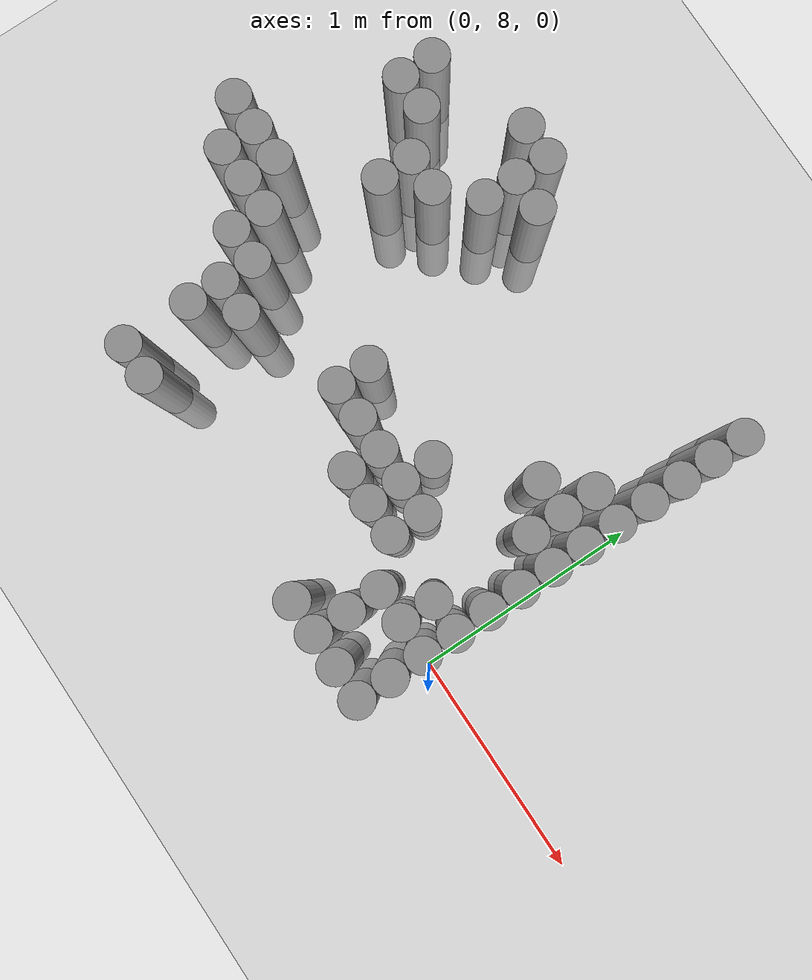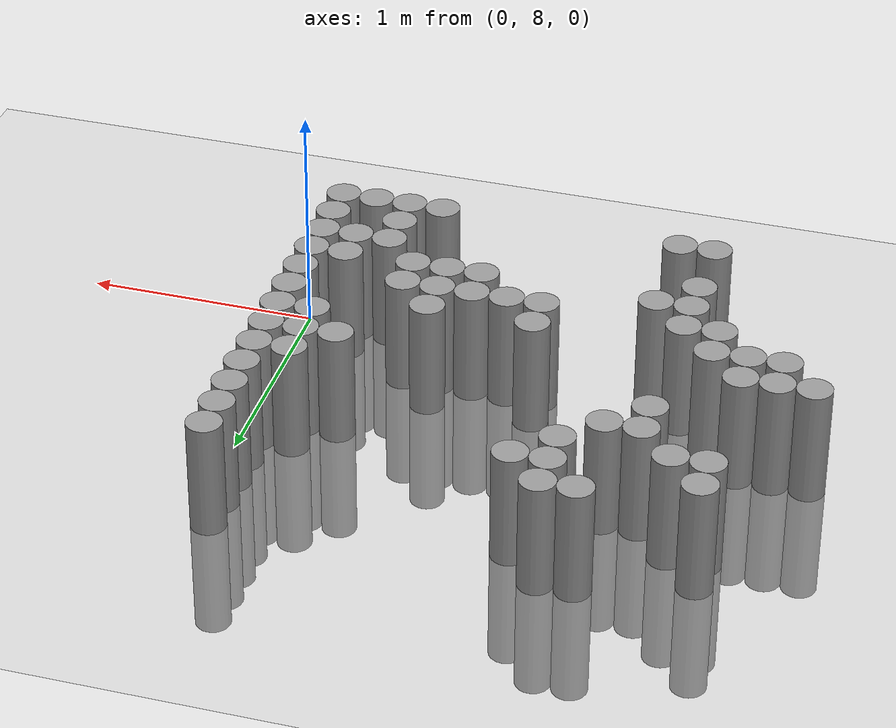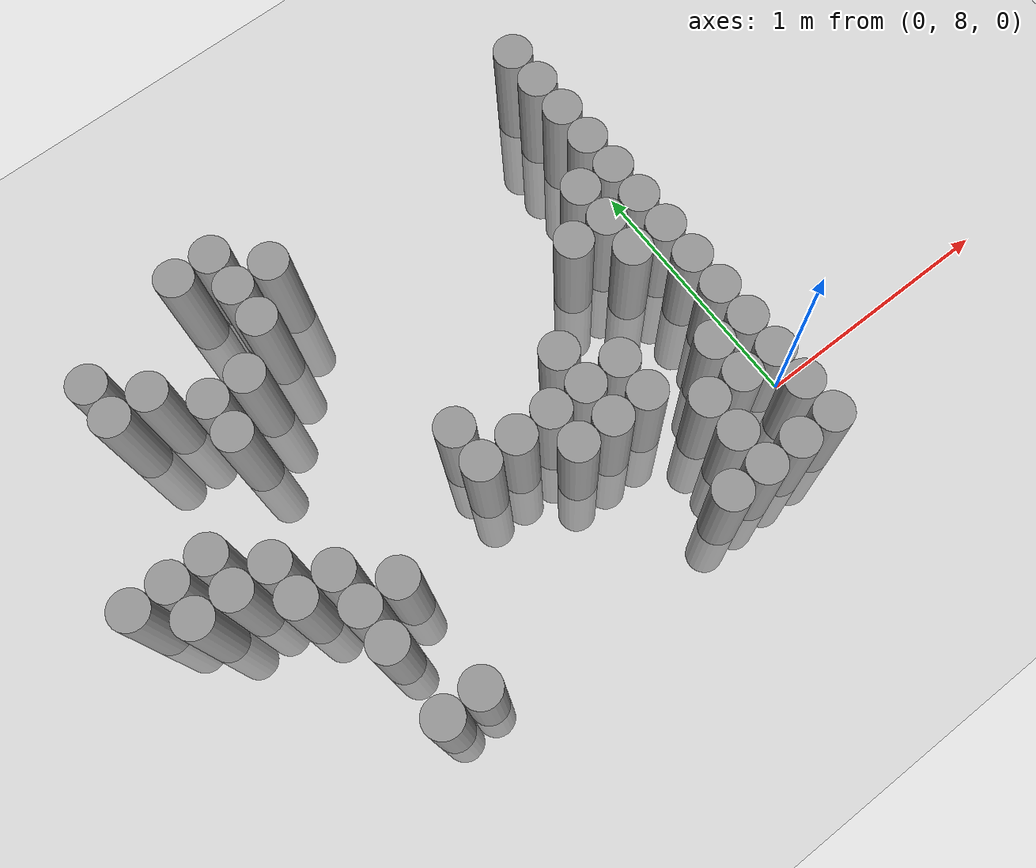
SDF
<sdf version="1.6">
 <world name="default">
  <model name="ground_plane">
   <static>1</static>
   <static>1</static>
   <link name="link">
    <collision name="collision">
     <geometry><plane><normal>0 0 1</normal><size>100 100</size></plane></geometry>
     <surface><friction><ode><mu>100</mu><mu2>50</mu2></ode></friction></surface>
    </collision>
    <visual name="visual">
     <cast_shadows>0</cast_shadows>
     <geometry><plane><normal>0 0 1</normal><size>100 100</size></plane></geometry>
     <material>
      <script><uri>file://media/materials/scripts/gazebo.material</uri><name>Gazebo/Grey</name></script>
     </material>
    </visual>
   </link>
  </model>
  <model name="unit_cylinder_181">
   <static>1</static>
   <pose>-2.325000 8.625000 0.000000 0.000000 0.000000 0.000000</pose>
   <link name="link">
    <inertial>
     <mass>1</mass>
     <inertia><ixx>0.145833</ixx><ixy>0</ixy><ixz>0</ixz><iyy>0.145833</iyy><iyz>0</iyz><izz>0.125</izz></inertia>
    </inertial>
    <collision name="collision">
     <geometry><cylinder><radius>0.075000</radius><length>1</length></cylinder></geometry>
    </collision>
    <visual name="visual">
     <geometry><cylinder><radius>0.075000</radius><length>1</length></cylinder></geometry>
     <material>
      <script><name>Gazebo/Grey</name><uri>file://media/materials/scripts/gazebo.material</uri></script>
     </material>
    </visual>
   </link>
  </model>
  <model name="unit_cylinder_183">
   <static>1</static>
   <pose>-2.175000 8.475000 0.000000 0.000000 0.000000 0.000000</pose>
   <link name="link">
    <inertial>
     <mass>1</mass>
     <inertia><ixx>0.145833</ixx><ixy>0</ixy><ixz>0</ixz><iyy>0.145833</iyy><iyz>0</iyz><izz>0.125</izz></inertia>
    </inertial>
    <collision name="collision">
     <geometry><cylinder><radius>0.075000</radius><length>1</length></cylinder></geometry>
    </collision>
    <visual name="visual">
     <geometry><cylinder><radius>0.075000</radius><length>1</length></cylinder></geometry>
     <material>
      <script><name>Gazebo/Grey</name><uri>file://media/materials/scripts/gazebo.material</uri></script>
     </material>
    </visual>
   </link>
  </model>
  <model name="unit_cylinder_184">
   <static>1</static>
   <pose>-2.175000 8.625000 0.000000 0.000000 0.000000 0.000000</pose>
   <link name="link">
    <inertial>
     <mass>1</mass>
     <inertia><ixx>0.145833</ixx><ixy>0</ixy><ixz>0</ixz><iyy>0.145833</iyy><iyz>0</iyz><izz>0.125</izz></inertia>
    </inertial>
    <collision name="collision">
     <geometry><cylinder><radius>0.075000</radius><length>1</length></cylinder></geometry>
    </collision>
    <visual name="visual">
     <geometry><cylinder><radius>0.075000</radius><length>1</length></cylinder></geometry>
     <material>
      <script><name>Gazebo/Grey</name><uri>file://media/materials/scripts/gazebo.material</uri></script>
     </material>
    </visual>
   </link>
  </model>
  <model name="unit_cylinder_185">
   <static>1</static>
   <pose>-2.025000 8.475000 0.000000 0.000000 0.000000 0.000000</pose>
   <link name="link">
    <inertial>
     <mass>1</mass>
     <inertia><ixx>0.145833</ixx><ixy>0</ixy><ixz>0</ixz><iyy>0.145833</iyy><iyz>0</iyz><izz>0.125</izz></inertia>
    </inertial>
    <collision name="collision">
     <geometry><cylinder><radius>0.075000</radius><length>1</length></cylinder></geometry>
    </collision>
    <visual name="visual">
     <geometry><cylinder><radius>0.075000</radius><length>1</length></cylinder></geometry>
     <material>
      <script><name>Gazebo/Grey</name><uri>file://media/materials/scripts/gazebo.material</uri></script>
     </material>
    </visual>
   </link>
  </model>
  <model name="unit_cylinder_186">
   <static>1</static>
   <pose>-2.025000 8.625000 0.000000 0.000000 0.000000 0.000000</pose>
   <link name="link">
    <inertial>
     <mass>1</mass>
     <inertia><ixx>0.145833</ixx><ixy>0</ixy><ixz>0</ixz><iyy>0.145833</iyy><iyz>0</iyz><izz>0.125</izz></inertia>
    </inertial>
    <collision name="collision">
     <geometry><cylinder><radius>0.075000</radius><length>1</length></cylinder></geometry>
    </collision>
    <visual name="visual">
     <geometry><cylinder><radius>0.075000</radius><length>1</length></cylinder></geometry>
     <material>
      <script><name>Gazebo/Grey</name><uri>file://media/materials/scripts/gazebo.material</uri></script>
     </material>
    </visual>
   </link>
  </model>
  <model name="unit_cylinder_187">
   <static>1</static>
   <pose>-2.025000 9.225000 0.000000 0.000000 0.000000 0.000000</pose>
   <link name="link">
    <inertial>
     <mass>1</mass>
     <inertia><ixx>0.145833</ixx><ixy>0</ixy><ixz>0</ixz><iyy>0.145833</iyy><iyz>0</iyz><izz>0.125</izz></inertia>
    </inertial>
    <collision name="collision">
     <geometry><cylinder><radius>0.075000</radius><length>1</length></cylinder></geometry>
    </collision>
    <visual name="visual">
     <geometry><cylinder><radius>0.075000</radius><length>1</length></cylinder></geometry>
     <material>
      <script><name>Gazebo/Grey</name><uri>file://media/materials/scripts/gazebo.material</uri></script>
     </material>
    </visual>
   </link>
  </model>
  <model name="unit_cylinder_188">
   <static>1</static>
   <pose>-2.025000 9.375000 0.000000 0.000000 0.000000 0.000000</pose>
   <link name="link">
    <inertial>
     <mass>1</mass>
     <inertia><ixx>0.145833</ixx><ixy>0</ixy><ixz>0</ixz><iyy>0.145833</iyy><iyz>0</iyz><izz>0.125</izz></inertia>
    </inertial>
    <collision name="collision">
     <geometry><cylinder><radius>0.075000</radius><length>1</length></cylinder></geometry>
    </collision>
    <visual name="visual">
     <geometry><cylinder><radius>0.075000</radius><length>1</length></cylinder></geometry>
     <material>
      <script><name>Gazebo/Grey</name><uri>file://media/materials/scripts/gazebo.material</uri></script>
     </material>
    </visual>
   </link>
  </model>
  <model name="unit_cylinder_189">
   <static>1</static>
   <pose>-1.875000 8.325000 0.000000 0.000000 0.000000 0.000000</pose>
   <link name="link">
    <inertial>
     <mass>1</mass>
     <inertia><ixx>0.145833</ixx><ixy>0</ixy><ixz>0</ixz><iyy>0.145833</iyy><iyz>0</iyz><izz>0.125</izz></inertia>
    </inertial>
    <collision name="collision">
     <geometry><cylinder><radius>0.075000</radius><length>1</length></cylinder></geometry>
    </collision>
    <visual name="visual">
     <geometry><cylinder><radius>0.075000</radius><length>1</length></cylinder></geometry>
     <material>
      <script><name>Gazebo/Grey</name><uri>file://media/materials/scripts/gazebo.material</uri></script>
     </material>
    </visual>
   </link>
  </model>
  <model name="unit_cylinder_190">
   <static>1</static>
   <pose>-1.875000 8.475000 0.000000 0.000000 0.000000 0.000000</pose>
   <link name="link">
    <inertial>
     <mass>1</mass>
     <inertia><ixx>0.145833</ixx><ixy>0</ixy><ixz>0</ixz><iyy>0.145833</iyy><iyz>0</iyz><izz>0.125</izz></inertia>
    </inertial>
    <collision name="collision">
     <geometry><cylinder><radius>0.075000</radius><length>1</length></cylinder></geometry>
    </collision>
    <visual name="visual">
     <geometry><cylinder><radius>0.075000</radius><length>1</length></cylinder></geometry>
     <material>
      <script><name>Gazebo/Grey</name><uri>file://media/materials/scripts/gazebo.material</uri></script>
     </material>
    </visual>
   </link>
  </model>
  <model name="unit_cylinder_191">
   <static>1</static>
   <pose>-1.875000 9.225000 0.000000 0.000000 0.000000 0.000000</pose>
   <link name="link">
    <inertial>
     <mass>1</mass>
     <inertia><ixx>0.145833</ixx><ixy>0</ixy><ixz>0</ixz><iyy>0.145833</iyy><iyz>0</iyz><izz>0.125</izz></inertia>
    </inertial>
    <collision name="collision">
     <geometry><cylinder><radius>0.075000</radius><length>1</length></cylinder></geometry>
    </collision>
    <visual name="visual">
     <geometry><cylinder><radius>0.075000</radius><length>1</length></cylinder></geometry>
     <material>
      <script><name>Gazebo/Grey</name><uri>file://media/materials/scripts/gazebo.material</uri></script>
     </material>
    </visual>
   </link>
  </model>
  <model name="unit_cylinder_193">
   <static>1</static>
   <pose>-1.725000 7.725000 0.000000 0.000000 0.000000 0.000000</pose>
   <link name="link">
    <inertial>
     <mass>1</mass>
     <inertia><ixx>0.145833</ixx><ixy>0</ixy><ixz>0</ixz><iyy>0.145833</iyy><iyz>0</iyz><izz>0.125</izz></inertia>
    </inertial>
    <collision name="collision">
     <geometry><cylinder><radius>0.075000</radius><length>1</length></cylinder></geometry>
    </collision>
    <visual name="visual">
     <geometry><cylinder><radius>0.075000</radius><length>1</length></cylinder></geometry>
     <material>
      <script><name>Gazebo/Grey</name><uri>file://media/materials/scripts/gazebo.material</uri></script>
     </material>
    </visual>
   </link>
  </model>
  <model name="unit_cylinder_194">
   <static>1</static>
   <pose>-1.725000 8.025000 0.000000 0.000000 0.000000 0.000000</pose>
   <link name="link">
    <inertial>
     <mass>1</mass>
     <inertia><ixx>0.145833</ixx><ixy>0</ixy><ixz>0</ixz><iyy>0.145833</iyy><iyz>0</iyz><izz>0.125</izz></inertia>
    </inertial>
    <collision name="collision">
     <geometry><cylinder><radius>0.075000</radius><length>1</length></cylinder></geometry>
    </collision>
    <visual name="visual">
     <geometry><cylinder><radius>0.075000</radius><length>1</length></cylinder></geometry>
     <material>
      <script><name>Gazebo/Grey</name><uri>file://media/materials/scripts/gazebo.material</uri></script>
     </material>
    </visual>
   </link>
  </model>
  <model name="unit_cylinder_195">
   <static>1</static>
   <pose>-1.725000 8.175000 0.000000 0.000000 0.000000 0.000000</pose>
   <link name="link">
    <inertial>
     <mass>1</mass>
     <inertia><ixx>0.145833</ixx><ixy>0</ixy><ixz>0</ixz><iyy>0.145833</iyy><iyz>0</iyz><izz>0.125</izz></inertia>
    </inertial>
    <collision name="collision">
     <geometry><cylinder><radius>0.075000</radius><length>1</length></cylinder></geometry>
    </collision>
    <visual name="visual">
     <geometry><cylinder><radius>0.075000</radius><length>1</length></cylinder></geometry>
     <material>
      <script><name>Gazebo/Grey</name><uri>file://media/materials/scripts/gazebo.material</uri></script>
     </material>
    </visual>
   </link>
  </model>
  <model name="unit_cylinder_196">
   <static>1</static>
   <pose>-1.725000 8.325000 0.000000 0.000000 0.000000 0.000000</pose>
   <link name="link">
    <inertial>
     <mass>1</mass>
     <inertia><ixx>0.145833</ixx><ixy>0</ixy><ixz>0</ixz><iyy>0.145833</iyy><iyz>0</iyz><izz>0.125</izz></inertia>
    </inertial>
    <collision name="collision">
     <geometry><cylinder><radius>0.075000</radius><length>1</length></cylinder></geometry>
    </collision>
    <visual name="visual">
     <geometry><cylinder><radius>0.075000</radius><length>1</length></cylinder></geometry>
     <material>
      <script><name>Gazebo/Grey</name><uri>file://media/materials/scripts/gazebo.material</uri></script>
     </material>
    </visual>
   </link>
  </model>
  <model name="unit_cylinder_197">
   <static>1</static>
   <pose>-1.725000 8.925000 0.000000 0.000000 0.000000 0.000000</pose>
   <link name="link">
    <inertial>
     <mass>1</mass>
     <inertia><ixx>0.145833</ixx><ixy>0</ixy><ixz>0</ixz><iyy>0.145833</iyy><iyz>0</iyz><izz>0.125</izz></inertia>
    </inertial>
    <collision name="collision">
     <geometry><cylinder><radius>0.075000</radius><length>1</length></cylinder></geometry>
    </collision>
    <visual name="visual">
     <geometry><cylinder><radius>0.075000</radius><length>1</length></cylinder></geometry>
     <material>
      <script><name>Gazebo/Grey</name><uri>file://media/materials/scripts/gazebo.material</uri></script>
     </material>
    </visual>
   </link>
  </model>
  <model name="unit_cylinder_198">
   <static>1</static>
   <pose>-1.725000 9.075000 0.000000 0.000000 0.000000 0.000000</pose>
   <link name="link">
    <inertial>
     <mass>1</mass>
     <inertia><ixx>0.145833</ixx><ixy>0</ixy><ixz>0</ixz><iyy>0.145833</iyy><iyz>0</iyz><izz>0.125</izz></inertia>
    </inertial>
    <collision name="collision">
     <geometry><cylinder><radius>0.075000</radius><length>1</length></cylinder></geometry>
    </collision>
    <visual name="visual">
     <geometry><cylinder><radius>0.075000</radius><length>1</length></cylinder></geometry>
     <material>
      <script><name>Gazebo/Grey</name><uri>file://media/materials/scripts/gazebo.material</uri></script>
     </material>
    </visual>
   </link>
  </model>
  <model name="unit_cylinder_201">
   <static>1</static>
   <pose>-1.575000 7.725000 0.000000 0.000000 0.000000 0.000000</pose>
   <link name="link">
    <inertial>
     <mass>1</mass>
     <inertia><ixx>0.145833</ixx><ixy>0</ixy><ixz>0</ixz><iyy>0.145833</iyy><iyz>0</iyz><izz>0.125</izz></inertia>
    </inertial>
    <collision name="collision">
     <geometry><cylinder><radius>0.075000</radius><length>1</length></cylinder></geometry>
    </collision>
    <visual name="visual">
     <geometry><cylinder><radius>0.075000</radius><length>1</length></cylinder></geometry>
     <material>
      <script><name>Gazebo/Grey</name><uri>file://media/materials/scripts/gazebo.material</uri></script>
     </material>
    </visual>
   </link>
  </model>
  <model name="unit_cylinder_202">
   <static>1</static>
   <pose>-1.575000 8.175000 0.000000 0.000000 0.000000 0.000000</pose>
   <link name="link">
    <inertial>
     <mass>1</mass>
     <inertia><ixx>0.145833</ixx><ixy>0</ixy><ixz>0</ixz><iyy>0.145833</iyy><iyz>0</iyz><izz>0.125</izz></inertia>
    </inertial>
    <collision name="collision">
     <geometry><cylinder><radius>0.075000</radius><length>1</length></cylinder></geometry>
    </collision>
    <visual name="visual">
     <geometry><cylinder><radius>0.075000</radius><length>1</length></cylinder></geometry>
     <material>
      <script><name>Gazebo/Grey</name><uri>file://media/materials/scripts/gazebo.material</uri></script>
     </material>
    </visual>
   </link>
  </model>
  <model name="unit_cylinder_203">
   <static>1</static>
   <pose>-1.575000 9.075000 0.000000 0.000000 0.000000 0.000000</pose>
   <link name="link">
    <inertial>
     <mass>1</mass>
     <inertia><ixx>0.145833</ixx><ixy>0</ixy><ixz>0</ixz><iyy>0.145833</iyy><iyz>0</iyz><izz>0.125</izz></inertia>
    </inertial>
    <collision name="collision">
     <geometry><cylinder><radius>0.075000</radius><length>1</length></cylinder></geometry>
    </collision>
    <visual name="visual">
     <geometry><cylinder><radius>0.075000</radius><length>1</length></cylinder></geometry>
     <material>
      <script><name>Gazebo/Grey</name><uri>file://media/materials/scripts/gazebo.material</uri></script>
     </material>
    </visual>
   </link>
  </model>
  <model name="unit_cylinder_204">
   <static>1</static>
   <pose>-1.575000 9.525000 0.000000 0.000000 0.000000 0.000000</pose>
   <link name="link">
    <inertial>
     <mass>1</mass>
     <inertia><ixx>0.145833</ixx><ixy>0</ixy><ixz>0</ixz><iyy>0.145833</iyy><iyz>0</iyz><izz>0.125</izz></inertia>
    </inertial>
    <collision name="collision">
     <geometry><cylinder><radius>0.075000</radius><length>1</length></cylinder></geometry>
    </collision>
    <visual name="visual">
     <geometry><cylinder><radius>0.075000</radius><length>1</length></cylinder></geometry>
     <material>
      <script><name>Gazebo/Grey</name><uri>file://media/materials/scripts/gazebo.material</uri></script>
     </material>
    </visual>
   </link>
  </model>
  <model name="unit_cylinder_206">
   <static>1</static>
   <pose>-1.425000 9.225000 0.000000 0.000000 0.000000 0.000000</pose>
   <link name="link">
    <inertial>
     <mass>1</mass>
     <inertia><ixx>0.145833</ixx><ixy>0</ixy><ixz>0</ixz><iyy>0.145833</iyy><iyz>0</iyz><izz>0.125</izz></inertia>
    </inertial>
    <collision name="collision">
     <geometry><cylinder><radius>0.075000</radius><length>1</length></cylinder></geometry>
    </collision>
    <visual name="visual">
     <geometry><cylinder><radius>0.075000</radius><length>1</length></cylinder></geometry>
     <material>
      <script><name>Gazebo/Grey</name><uri>file://media/materials/scripts/gazebo.material</uri></script>
     </material>
    </visual>
   </link>
  </model>
  <model name="unit_cylinder_207">
   <static>1</static>
   <pose>-1.425000 9.375000 0.000000 0.000000 0.000000 0.000000</pose>
   <link name="link">
    <inertial>
     <mass>1</mass>
     <inertia><ixx>0.145833</ixx><ixy>0</ixy><ixz>0</ixz><iyy>0.145833</iyy><iyz>0</iyz><izz>0.125</izz></inertia>
    </inertial>
    <collision name="collision">
     <geometry><cylinder><radius>0.075000</radius><length>1</length></cylinder></geometry>
    </collision>
    <visual name="visual">
     <geometry><cylinder><radius>0.075000</radius><length>1</length></cylinder></geometry>
     <material>
      <script><name>Gazebo/Grey</name><uri>file://media/materials/scripts/gazebo.material</uri></script>
     </material>
    </visual>
   </link>
  </model>
  <model name="unit_cylinder_208">
   <static>1</static>
   <pose>-1.425000 9.525000 0.000000 0.000000 0.000000 0.000000</pose>
   <link name="link">
    <inertial>
     <mass>1</mass>
     <inertia><ixx>0.145833</ixx><ixy>0</ixy><ixz>0</ixz><iyy>0.145833</iyy><iyz>0</iyz><izz>0.125</izz></inertia>
    </inertial>
    <collision name="collision">
     <geometry><cylinder><radius>0.075000</radius><length>1</length></cylinder></geometry>
    </collision>
    <visual name="visual">
     <geometry><cylinder><radius>0.075000</radius><length>1</length></cylinder></geometry>
     <material>
      <script><name>Gazebo/Grey</name><uri>file://media/materials/scripts/gazebo.material</uri></script>
     </material>
    </visual>
   </link>
  </model>
  <model name="unit_cylinder_209">
   <static>1</static>
   <pose>-1.275000 9.375000 0.000000 0.000000 0.000000 0.000000</pose>
   <link name="link">
    <inertial>
     <mass>1</mass>
     <inertia><ixx>0.145833</ixx><ixy>0</ixy><ixz>0</ixz><iyy>0.145833</iyy><iyz>0</iyz><izz>0.125</izz></inertia>
    </inertial>
    <collision name="collision">
     <geometry><cylinder><radius>0.075000</radius><length>1</length></cylinder></geometry>
    </collision>
    <visual name="visual">
     <geometry><cylinder><radius>0.075000</radius><length>1</length></cylinder></geometry>
     <material>
      <script><name>Gazebo/Grey</name><uri>file://media/materials/scripts/gazebo.material</uri></script>
     </material>
    </visual>
   </link>
  </model>
  <model name="unit_cylinder_210">
   <static>1</static>
   <pose>-1.125000 8.325000 0.000000 0.000000 0.000000 0.000000</pose>
   <link name="link">
    <inertial>
     <mass>1</mass>
     <inertia><ixx>0.145833</ixx><ixy>0</ixy><ixz>0</ixz><iyy>0.145833</iyy><iyz>0</iyz><izz>0.125</izz></inertia>
    </inertial>
    <collision name="collision">
     <geometry><cylinder><radius>0.075000</radius><length>1</length></cylinder></geometry>
    </collision>
    <visual name="visual">
     <geometry><cylinder><radius>0.075000</radius><length>1</length></cylinder></geometry>
     <material>
      <script><name>Gazebo/Grey</name><uri>file://media/materials/scripts/gazebo.material</uri></script>
     </material>
    </visual>
   </link>
  </model>
  <model name="unit_cylinder_211">
   <static>1</static>
   <pose>-1.125000 8.475000 0.000000 0.000000 0.000000 0.000000</pose>
   <link name="link">
    <inertial>
     <mass>1</mass>
     <inertia><ixx>0.145833</ixx><ixy>0</ixy><ixz>0</ixz><iyy>0.145833</iyy><iyz>0</iyz><izz>0.125</izz></inertia>
    </inertial>
    <collision name="collision">
     <geometry><cylinder><radius>0.075000</radius><length>1</length></cylinder></geometry>
    </collision>
    <visual name="visual">
     <geometry><cylinder><radius>0.075000</radius><length>1</length></cylinder></geometry>
     <material>
      <script><name>Gazebo/Grey</name><uri>file://media/materials/scripts/gazebo.material</uri></script>
     </material>
    </visual>
   </link>
  </model>
  <model name="unit_cylinder_214">
   <static>1</static>
   <pose>-0.975000 8.325000 0.000000 0.000000 0.000000 0.000000</pose>
   <link name="link">
    <inertial>
     <mass>1</mass>
     <inertia><ixx>0.145833</ixx><ixy>0</ixy><ixz>0</ixz><iyy>0.145833</iyy><iyz>0</iyz><izz>0.125</izz></inertia>
    </inertial>
    <collision name="collision">
     <geometry><cylinder><radius>0.075000</radius><length>1</length></cylinder></geometry>
    </collision>
    <visual name="visual">
     <geometry><cylinder><radius>0.075000</radius><length>1</length></cylinder></geometry>
     <material>
      <script><name>Gazebo/Grey</name><uri>file://media/materials/scripts/gazebo.material</uri></script>
     </material>
    </visual>
   </link>
  </model>
  <model name="unit_cylinder_219">
   <static>1</static>
   <pose>-0.825000 8.175000 0.000000 0.000000 0.000000 0.000000</pose>
   <link name="link">
    <inertial>
     <mass>1</mass>
     <inertia><ixx>0.145833</ixx><ixy>0</ixy><ixz>0</ixz><iyy>0.145833</iyy><iyz>0</iyz><izz>0.125</izz></inertia>
    </inertial>
    <collision name="collision">
     <geometry><cylinder><radius>0.075000</radius><length>1</length></cylinder></geometry>
    </collision>
    <visual name="visual">
     <geometry><cylinder><radius>0.075000</radius><length>1</length></cylinder></geometry>
     <material>
      <script><name>Gazebo/Grey</name><uri>file://media/materials/scripts/gazebo.material</uri></script>
     </material>
    </visual>
   </link>
  </model>
  <model name="unit_cylinder_220">
   <static>1</static>
   <pose>-0.825000 8.325000 0.000000 0.000000 0.000000 0.000000</pose>
   <link name="link">
    <inertial>
     <mass>1</mass>
     <inertia><ixx>0.145833</ixx><ixy>0</ixy><ixz>0</ixz><iyy>0.145833</iyy><iyz>0</iyz><izz>0.125</izz></inertia>
    </inertial>
    <collision name="collision">
     <geometry><cylinder><radius>0.075000</radius><length>1</length></cylinder></geometry>
    </collision>
    <visual name="visual">
     <geometry><cylinder><radius>0.075000</radius><length>1</length></cylinder></geometry>
     <material>
      <script><name>Gazebo/Grey</name><uri>file://media/materials/scripts/gazebo.material</uri></script>
     </material>
    </visual>
   </link>
  </model>
  <model name="unit_cylinder_224">
   <static>1</static>
   <pose>-0.675000 8.175000 0.000000 0.000000 0.000000 0.000000</pose>
   <link name="link">
    <inertial>
     <mass>1</mass>
     <inertia><ixx>0.145833</ixx><ixy>0</ixy><ixz>0</ixz><iyy>0.145833</iyy><iyz>0</iyz><izz>0.125</izz></inertia>
    </inertial>
    <collision name="collision">
     <geometry><cylinder><radius>0.075000</radius><length>1</length></cylinder></geometry>
    </collision>
    <visual name="visual">
     <geometry><cylinder><radius>0.075000</radius><length>1</length></cylinder></geometry>
     <material>
      <script><name>Gazebo/Grey</name><uri>file://media/materials/scripts/gazebo.material</uri></script>
     </material>
    </visual>
   </link>
  </model>
  <model name="unit_cylinder_225">
   <static>1</static>
   <pose>-0.675000 8.325000 0.000000 0.000000 0.000000 0.000000</pose>
   <link name="link">
    <inertial>
     <mass>1</mass>
     <inertia><ixx>0.145833</ixx><ixy>0</ixy><ixz>0</ixz><iyy>0.145833</iyy><iyz>0</iyz><izz>0.125</izz></inertia>
    </inertial>
    <collision name="collision">
     <geometry><cylinder><radius>0.075000</radius><length>1</length></cylinder></geometry>
    </collision>
    <visual name="visual">
     <geometry><cylinder><radius>0.075000</radius><length>1</length></cylinder></geometry>
     <material>
      <script><name>Gazebo/Grey</name><uri>file://media/materials/scripts/gazebo.material</uri></script>
     </material>
    </visual>
   </link>
  </model>
  <model name="unit_cylinder_226">
   <static>1</static>
   <pose>-0.675000 8.475000 0.000000 0.000000 0.000000 0.000000</pose>
   <link name="link">
    <inertial>
     <mass>1</mass>
     <inertia><ixx>0.145833</ixx><ixy>0</ixy><ixz>0</ixz><iyy>0.145833</iyy><iyz>0</iyz><izz>0.125</izz></inertia>
    </inertial>
    <collision name="collision">
     <geometry><cylinder><radius>0.075000</radius><length>1</length></cylinder></geometry>
    </collision>
    <visual name="visual">
     <geometry><cylinder><radius>0.075000</radius><length>1</length></cylinder></geometry>
     <material>
      <script><name>Gazebo/Grey</name><uri>file://media/materials/scripts/gazebo.material</uri></script>
     </material>
    </visual>
   </link>
  </model>
  <model name="unit_cylinder_231">
   <static>1</static>
   <pose>-0.525000 7.725000 0.000000 0.000000 0.000000 0.000000</pose>
   <link name="link">
    <inertial>
     <mass>1</mass>
     <inertia><ixx>0.145833</ixx><ixy>0</ixy><ixz>0</ixz><iyy>0.145833</iyy><iyz>0</iyz><izz>0.125</izz></inertia>
    </inertial>
    <collision name="collision">
     <geometry><cylinder><radius>0.075000</radius><length>1</length></cylinder></geometry>
    </collision>
    <visual name="visual">
     <geometry><cylinder><radius>0.075000</radius><length>1</length></cylinder></geometry>
     <material>
      <script><name>Gazebo/Grey</name><uri>file://media/materials/scripts/gazebo.material</uri></script>
     </material>
    </visual>
   </link>
  </model>
  <model name="unit_cylinder_232">
   <static>1</static>
   <pose>-0.525000 8.175000 0.000000 0.000000 0.000000 0.000000</pose>
   <link name="link">
    <inertial>
     <mass>1</mass>
     <inertia><ixx>0.145833</ixx><ixy>0</ixy><ixz>0</ixz><iyy>0.145833</iyy><iyz>0</iyz><izz>0.125</izz></inertia>
    </inertial>
    <collision name="collision">
     <geometry><cylinder><radius>0.075000</radius><length>1</length></cylinder></geometry>
    </collision>
    <visual name="visual">
     <geometry><cylinder><radius>0.075000</radius><length>1</length></cylinder></geometry>
     <material>
      <script><name>Gazebo/Grey</name><uri>file://media/materials/scripts/gazebo.material</uri></script>
     </material>
    </visual>
   </link>
  </model>
  <model name="unit_cylinder_233">
   <static>1</static>
   <pose>-0.525000 8.325000 0.000000 0.000000 0.000000 0.000000</pose>
   <link name="link">
    <inertial>
     <mass>1</mass>
     <inertia><ixx>0.145833</ixx><ixy>0</ixy><ixz>0</ixz><iyy>0.145833</iyy><iyz>0</iyz><izz>0.125</izz></inertia>
    </inertial>
    <collision name="collision">
     <geometry><cylinder><radius>0.075000</radius><length>1</length></cylinder></geometry>
    </collision>
    <visual name="visual">
     <geometry><cylinder><radius>0.075000</radius><length>1</length></cylinder></geometry>
     <material>
      <script><name>Gazebo/Grey</name><uri>file://media/materials/scripts/gazebo.material</uri></script>
     </material>
    </visual>
   </link>
  </model>
  <model name="unit_cylinder_239">
   <static>1</static>
   <pose>-0.375000 7.725000 0.000000 0.000000 0.000000 0.000000</pose>
   <link name="link">
    <inertial>
     <mass>1</mass>
     <inertia><ixx>0.145833</ixx><ixy>0</ixy><ixz>0</ixz><iyy>0.145833</iyy><iyz>0</iyz><izz>0.125</izz></inertia>
    </inertial>
    <collision name="collision">
     <geometry><cylinder><radius>0.075000</radius><length>1</length></cylinder></geometry>
    </collision>
    <visual name="visual">
     <geometry><cylinder><radius>0.075000</radius><length>1</length></cylinder></geometry>
     <material>
      <script><name>Gazebo/Grey</name><uri>file://media/materials/scripts/gazebo.material</uri></script>
     </material>
    </visual>
   </link>
  </model>
  <model name="unit_cylinder_240">
   <static>1</static>
   <pose>-0.375000 7.875000 0.000000 0.000000 0.000000 0.000000</pose>
   <link name="link">
    <inertial>
     <mass>1</mass>
     <inertia><ixx>0.145833</ixx><ixy>0</ixy><ixz>0</ixz><iyy>0.145833</iyy><iyz>0</iyz><izz>0.125</izz></inertia>
    </inertial>
    <collision name="collision">
     <geometry><cylinder><radius>0.075000</radius><length>1</length></cylinder></geometry>
    </collision>
    <visual name="visual">
     <geometry><cylinder><radius>0.075000</radius><length>1</length></cylinder></geometry>
     <material>
      <script><name>Gazebo/Grey</name><uri>file://media/materials/scripts/gazebo.material</uri></script>
     </material>
    </visual>
   </link>
  </model>
  <model name="unit_cylinder_241">
   <static>1</static>
   <pose>-0.375000 8.025000 0.000000 0.000000 0.000000 0.000000</pose>
   <link name="link">
    <inertial>
     <mass>1</mass>
     <inertia><ixx>0.145833</ixx><ixy>0</ixy><ixz>0</ixz><iyy>0.145833</iyy><iyz>0</iyz><izz>0.125</izz></inertia>
    </inertial>
    <collision name="collision">
     <geometry><cylinder><radius>0.075000</radius><length>1</length></cylinder></geometry>
    </collision>
    <visual name="visual">
     <geometry><cylinder><radius>0.075000</radius><length>1</length></cylinder></geometry>
     <material>
      <script><name>Gazebo/Grey</name><uri>file://media/materials/scripts/gazebo.material</uri></script>
     </material>
    </visual>
   </link>
  </model>
  <model name="unit_cylinder_242">
   <static>1</static>
   <pose>-0.375000 8.775000 0.000000 0.000000 0.000000 0.000000</pose>
   <link name="link">
    <inertial>
     <mass>1</mass>
     <inertia><ixx>0.145833</ixx><ixy>0</ixy><ixz>0</ixz><iyy>0.145833</iyy><iyz>0</iyz><izz>0.125</izz></inertia>
    </inertial>
    <collision name="collision">
     <geometry><cylinder><radius>0.075000</radius><length>1</length></cylinder></geometry>
    </collision>
    <visual name="visual">
     <geometry><cylinder><radius>0.075000</radius><length>1</length></cylinder></geometry>
     <material>
      <script><name>Gazebo/Grey</name><uri>file://media/materials/scripts/gazebo.material</uri></script>
     </material>
    </visual>
   </link>
  </model>
  <model name="unit_cylinder_253">
   <static>1</static>
   <pose>-0.225000 7.725000 0.000000 0.000000 0.000000 0.000000</pose>
   <link name="link">
    <inertial>
     <mass>1</mass>
     <inertia><ixx>0.145833</ixx><ixy>0</ixy><ixz>0</ixz><iyy>0.145833</iyy><iyz>0</iyz><izz>0.125</izz></inertia>
    </inertial>
    <collision name="collision">
     <geometry><cylinder><radius>0.075000</radius><length>1</length></cylinder></geometry>
    </collision>
    <visual name="visual">
     <geometry><cylinder><radius>0.075000</radius><length>1</length></cylinder></geometry>
     <material>
      <script><name>Gazebo/Grey</name><uri>file://media/materials/scripts/gazebo.material</uri></script>
     </material>
    </visual>
   </link>
  </model>
  <model name="unit_cylinder_254">
   <static>1</static>
   <pose>-0.225000 8.025000 0.000000 0.000000 0.000000 0.000000</pose>
   <link name="link">
    <inertial>
     <mass>1</mass>
     <inertia><ixx>0.145833</ixx><ixy>0</ixy><ixz>0</ixz><iyy>0.145833</iyy><iyz>0</iyz><izz>0.125</izz></inertia>
    </inertial>
    <collision name="collision">
     <geometry><cylinder><radius>0.075000</radius><length>1</length></cylinder></geometry>
    </collision>
    <visual name="visual">
     <geometry><cylinder><radius>0.075000</radius><length>1</length></cylinder></geometry>
     <material>
      <script><name>Gazebo/Grey</name><uri>file://media/materials/scripts/gazebo.material</uri></script>
     </material>
    </visual>
   </link>
  </model>
  <model name="unit_cylinder_255">
   <static>1</static>
   <pose>-0.225000 8.175000 0.000000 0.000000 0.000000 0.000000</pose>
   <link name="link">
    <inertial>
     <mass>1</mass>
     <inertia><ixx>0.145833</ixx><ixy>0</ixy><ixz>0</ixz><iyy>0.145833</iyy><iyz>0</iyz><izz>0.125</izz></inertia>
    </inertial>
    <collision name="collision">
     <geometry><cylinder><radius>0.075000</radius><length>1</length></cylinder></geometry>
    </collision>
    <visual name="visual">
     <geometry><cylinder><radius>0.075000</radius><length>1</length></cylinder></geometry>
     <material>
      <script><name>Gazebo/Grey</name><uri>file://media/materials/scripts/gazebo.material</uri></script>
     </material>
    </visual>
   </link>
  </model>
  <model name="unit_cylinder_256">
   <static>1</static>
   <pose>-0.225000 8.625000 0.000000 0.000000 0.000000 0.000000</pose>
   <link name="link">
    <inertial>
     <mass>1</mass>
     <inertia><ixx>0.145833</ixx><ixy>0</ixy><ixz>0</ixz><iyy>0.145833</iyy><iyz>0</iyz><izz>0.125</izz></inertia>
    </inertial>
    <collision name="collision">
     <geometry><cylinder><radius>0.075000</radius><length>1</length></cylinder></geometry>
    </collision>
    <visual name="visual">
     <geometry><cylinder><radius>0.075000</radius><length>1</length></cylinder></geometry>
     <material>
      <script><name>Gazebo/Grey</name><uri>file://media/materials/scripts/gazebo.material</uri></script>
     </material>
    </visual>
   </link>
  </model>
  <model name="unit_cylinder_257">
   <static>1</static>
   <pose>-0.225000 8.775000 0.000000 0.000000 0.000000 0.000000</pose>
   <link name="link">
    <inertial>
     <mass>1</mass>
     <inertia><ixx>0.145833</ixx><ixy>0</ixy><ixz>0</ixz><iyy>0.145833</iyy><iyz>0</iyz><izz>0.125</izz></inertia>
    </inertial>
    <collision name="collision">
     <geometry><cylinder><radius>0.075000</radius><length>1</length></cylinder></geometry>
    </collision>
    <visual name="visual">
     <geometry><cylinder><radius>0.075000</radius><length>1</length></cylinder></geometry>
     <material>
      <script><name>Gazebo/Grey</name><uri>file://media/materials/scripts/gazebo.material</uri></script>
     </material>
    </visual>
   </link>
  </model>
  <model name="unit_cylinder_258">
   <static>1</static>
   <pose>-0.225000 8.925000 0.000000 0.000000 0.000000 0.000000</pose>
   <link name="link">
    <inertial>
     <mass>1</mass>
     <inertia><ixx>0.145833</ixx><ixy>0</ixy><ixz>0</ixz><iyy>0.145833</iyy><iyz>0</iyz><izz>0.125</izz></inertia>
    </inertial>
    <collision name="collision">
     <geometry><cylinder><radius>0.075000</radius><length>1</length></cylinder></geometry>
    </collision>
    <visual name="visual">
     <geometry><cylinder><radius>0.075000</radius><length>1</length></cylinder></geometry>
     <material>
      <script><name>Gazebo/Grey</name><uri>file://media/materials/scripts/gazebo.material</uri></script>
     </material>
    </visual>
   </link>
  </model>
  <model name="unit_cylinder_276">
   <static>1</static>
   <pose>-0.075000 7.725000 0.000000 0.000000 0.000000 0.000000</pose>
   <link name="link">
    <inertial>
     <mass>1</mass>
     <inertia><ixx>0.145833</ixx><ixy>0</ixy><ixz>0</ixz><iyy>0.145833</iyy><iyz>0</iyz><izz>0.125</izz></inertia>
    </inertial>
    <collision name="collision">
     <geometry><cylinder><radius>0.075000</radius><length>1</length></cylinder></geometry>
    </collision>
    <visual name="visual">
     <geometry><cylinder><radius>0.075000</radius><length>1</length></cylinder></geometry>
     <material>
      <script><name>Gazebo/Grey</name><uri>file://media/materials/scripts/gazebo.material</uri></script>
     </material>
    </visual>
   </link>
  </model>
  <model name="unit_cylinder_277">
   <static>1</static>
   <pose>-0.075000 7.875000 0.000000 0.000000 0.000000 0.000000</pose>
   <link name="link">
    <inertial>
     <mass>1</mass>
     <inertia><ixx>0.145833</ixx><ixy>0</ixy><ixz>0</ixz><iyy>0.145833</iyy><iyz>0</iyz><izz>0.125</izz></inertia>
    </inertial>
    <collision name="collision">
     <geometry><cylinder><radius>0.075000</radius><length>1</length></cylinder></geometry>
    </collision>
    <visual name="visual">
     <geometry><cylinder><radius>0.075000</radius><length>1</length></cylinder></geometry>
     <material>
      <script><name>Gazebo/Grey</name><uri>file://media/materials/scripts/gazebo.material</uri></script>
     </material>
    </visual>
   </link>
  </model>
  <model name="unit_cylinder_278">
   <static>1</static>
   <pose>-0.075000 8.025000 0.000000 0.000000 0.000000 0.000000</pose>
   <link name="link">
    <inertial>
     <mass>1</mass>
     <inertia><ixx>0.145833</ixx><ixy>0</ixy><ixz>0</ixz><iyy>0.145833</iyy><iyz>0</iyz><izz>0.125</izz></inertia>
    </inertial>
    <collision name="collision">
     <geometry><cylinder><radius>0.075000</radius><length>1</length></cylinder></geometry>
    </collision>
    <visual name="visual">
     <geometry><cylinder><radius>0.075000</radius><length>1</length></cylinder></geometry>
     <material>
      <script><name>Gazebo/Grey</name><uri>file://media/materials/scripts/gazebo.material</uri></script>
     </material>
    </visual>
   </link>
  </model>
  <model name="unit_cylinder_279">
   <static>1</static>
   <pose>-0.075000 8.175000 0.000000 0.000000 0.000000 0.000000</pose>
   <link name="link">
    <inertial>
     <mass>1</mass>
     <inertia><ixx>0.145833</ixx><ixy>0</ixy><ixz>0</ixz><iyy>0.145833</iyy><iyz>0</iyz><izz>0.125</izz></inertia>
    </inertial>
    <collision name="collision">
     <geometry><cylinder><radius>0.075000</radius><length>1</length></cylinder></geometry>
    </collision>
    <visual name="visual">
     <geometry><cylinder><radius>0.075000</radius><length>1</length></cylinder></geometry>
     <material>
      <script><name>Gazebo/Grey</name><uri>file://media/materials/scripts/gazebo.material</uri></script>
     </material>
    </visual>
   </link>
  </model>
  <model name="unit_cylinder_280">
   <static>1</static>
   <pose>-0.075000 8.325000 0.000000 0.000000 0.000000 0.000000</pose>
   <link name="link">
    <inertial>
     <mass>1</mass>
     <inertia><ixx>0.145833</ixx><ixy>0</ixy><ixz>0</ixz><iyy>0.145833</iyy><iyz>0</iyz><izz>0.125</izz></inertia>
    </inertial>
    <collision name="collision">
     <geometry><cylinder><radius>0.075000</radius><length>1</length></cylinder></geometry>
    </collision>
    <visual name="visual">
     <geometry><cylinder><radius>0.075000</radius><length>1</length></cylinder></geometry>
     <material>
      <script><name>Gazebo/Grey</name><uri>file://media/materials/scripts/gazebo.material</uri></script>
     </material>
    </visual>
   </link>
  </model>
  <model name="unit_cylinder_281">
   <static>1</static>
   <pose>-0.075000 8.475000 0.000000 0.000000 0.000000 0.000000</pose>
   <link name="link">
    <inertial>
     <mass>1</mass>
     <inertia><ixx>0.145833</ixx><ixy>0</ixy><ixz>0</ixz><iyy>0.145833</iyy><iyz>0</iyz><izz>0.125</izz></inertia>
    </inertial>
    <collision name="collision">
     <geometry><cylinder><radius>0.075000</radius><length>1</length></cylinder></geometry>
    </collision>
    <visual name="visual">
     <geometry><cylinder><radius>0.075000</radius><length>1</length></cylinder></geometry>
     <material>
      <script><name>Gazebo/Grey</name><uri>file://media/materials/scripts/gazebo.material</uri></script>
     </material>
    </visual>
   </link>
  </model>
  <model name="unit_cylinder_282">
   <static>1</static>
   <pose>-0.075000 8.625000 0.000000 0.000000 0.000000 0.000000</pose>
   <link name="link">
    <inertial>
     <mass>1</mass>
     <inertia><ixx>0.145833</ixx><ixy>0</ixy><ixz>0</ixz><iyy>0.145833</iyy><iyz>0</iyz><izz>0.125</izz></inertia>
    </inertial>
    <collision name="collision">
     <geometry><cylinder><radius>0.075000</radius><length>1</length></cylinder></geometry>
    </collision>
    <visual name="visual">
     <geometry><cylinder><radius>0.075000</radius><length>1</length></cylinder></geometry>
     <material>
      <script><name>Gazebo/Grey</name><uri>file://media/materials/scripts/gazebo.material</uri></script>
     </material>
    </visual>
   </link>
  </model>
  <model name="unit_cylinder_283">
   <static>1</static>
   <pose>-0.075000 8.775000 0.000000 0.000000 0.000000 0.000000</pose>
   <link name="link">
    <inertial>
     <mass>1</mass>
     <inertia><ixx>0.145833</ixx><ixy>0</ixy><ixz>0</ixz><iyy>0.145833</iyy><iyz>0</iyz><izz>0.125</izz></inertia>
    </inertial>
    <collision name="collision">
     <geometry><cylinder><radius>0.075000</radius><length>1</length></cylinder></geometry>
    </collision>
    <visual name="visual">
     <geometry><cylinder><radius>0.075000</radius><length>1</length></cylinder></geometry>
     <material>
      <script><name>Gazebo/Grey</name><uri>file://media/materials/scripts/gazebo.material</uri></script>
     </material>
    </visual>
   </link>
  </model>
  <model name="unit_cylinder_284">
   <static>1</static>
   <pose>-0.075000 8.925000 0.000000 0.000000 0.000000 0.000000</pose>
   <link name="link">
    <inertial>
     <mass>1</mass>
     <inertia><ixx>0.145833</ixx><ixy>0</ixy><ixz>0</ixz><iyy>0.145833</iyy><iyz>0</iyz><izz>0.125</izz></inertia>
    </inertial>
    <collision name="collision">
     <geometry><cylinder><radius>0.075000</radius><length>1</length></cylinder></geometry>
    </collision>
    <visual name="visual">
     <geometry><cylinder><radius>0.075000</radius><length>1</length></cylinder></geometry>
     <material>
      <script><name>Gazebo/Grey</name><uri>file://media/materials/scripts/gazebo.material</uri></script>
     </material>
    </visual>
   </link>
  </model>
  <model name="unit_cylinder_285">
   <static>1</static>
   <pose>-0.075000 9.075000 0.000000 0.000000 0.000000 0.000000</pose>
   <link name="link">
    <inertial>
     <mass>1</mass>
     <inertia><ixx>0.145833</ixx><ixy>0</ixy><ixz>0</ixz><iyy>0.145833</iyy><iyz>0</iyz><izz>0.125</izz></inertia>
    </inertial>
    <collision name="collision">
     <geometry><cylinder><radius>0.075000</radius><length>1</length></cylinder></geometry>
    </collision>
    <visual name="visual">
     <geometry><cylinder><radius>0.075000</radius><length>1</length></cylinder></geometry>
     <material>
      <script><name>Gazebo/Grey</name><uri>file://media/materials/scripts/gazebo.material</uri></script>
     </material>
    </visual>
   </link>
  </model>
  <model name="unit_cylinder_286">
   <static>1</static>
   <pose>-0.075000 9.225000 0.000000 0.000000 0.000000 0.000000</pose>
   <link name="link">
    <inertial>
     <mass>1</mass>
     <inertia><ixx>0.145833</ixx><ixy>0</ixy><ixz>0</ixz><iyy>0.145833</iyy><iyz>0</iyz><izz>0.125</izz></inertia>
    </inertial>
    <collision name="collision">
     <geometry><cylinder><radius>0.075000</radius><length>1</length></cylinder></geometry>
    </collision>
    <visual name="visual">
     <geometry><cylinder><radius>0.075000</radius><length>1</length></cylinder></geometry>
     <material>
      <script><name>Gazebo/Grey</name><uri>file://media/materials/scripts/gazebo.material</uri></script>
     </material>
    </visual>
   </link>
  </model>
  <model name="unit_cylinder_287">
   <static>1</static>
   <pose>-0.075000 9.375000 0.000000 0.000000 0.000000 0.000000</pose>
   <link name="link">
    <inertial>
     <mass>1</mass>
     <inertia><ixx>0.145833</ixx><ixy>0</ixy><ixz>0</ixz><iyy>0.145833</iyy><iyz>0</iyz><izz>0.125</izz></inertia>
    </inertial>
    <collision name="collision">
     <geometry><cylinder><radius>0.075000</radius><length>1</length></cylinder></geometry>
    </collision>
    <visual name="visual">
     <geometry><cylinder><radius>0.075000</radius><length>1</length></cylinder></geometry>
     <material>
      <script><name>Gazebo/Grey</name><uri>file://media/materials/scripts/gazebo.material</uri></script>
     </material>
    </visual>
   </link>
  </model>
  <model name="unit_cylinder_288">
   <static>1</static>
   <pose>-0.075000 9.525000 0.000000 0.000000 0.000000 0.000000</pose>
   <link name="link">
    <inertial>
     <mass>1</mass>
     <inertia><ixx>0.145833</ixx><ixy>0</ixy><ixz>0</ixz><iyy>0.145833</iyy><iyz>0</iyz><izz>0.125</izz></inertia>
    </inertial>
    <collision name="collision">
     <geometry><cylinder><radius>0.075000</radius><length>1</length></cylinder></geometry>
    </collision>
    <visual name="visual">
     <geometry><cylinder><radius>0.075000</radius><length>1</length></cylinder></geometry>
     <material>
      <script><name>Gazebo/Grey</name><uri>file://media/materials/scripts/gazebo.material</uri></script>
     </material>
    </visual>
   </link>
  </model>
 </world>
</sdf>
